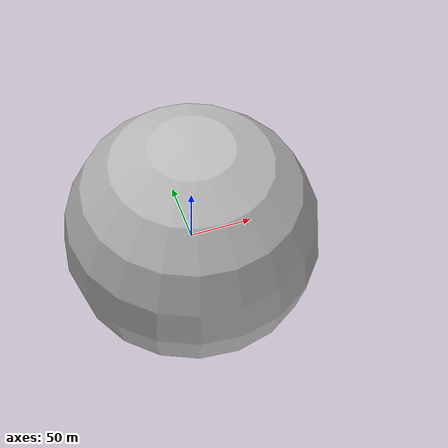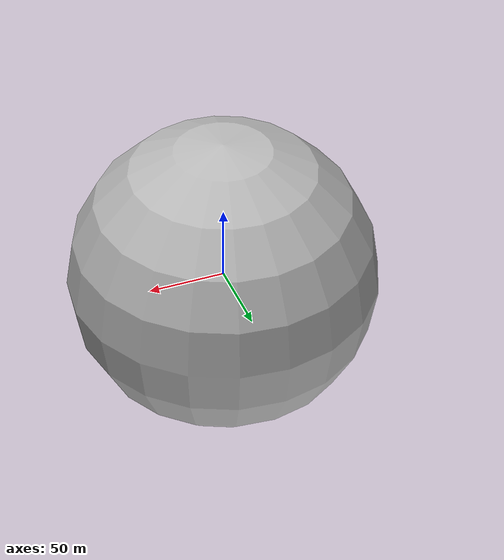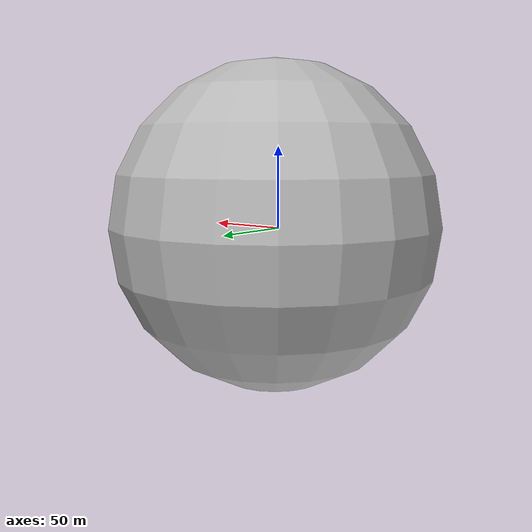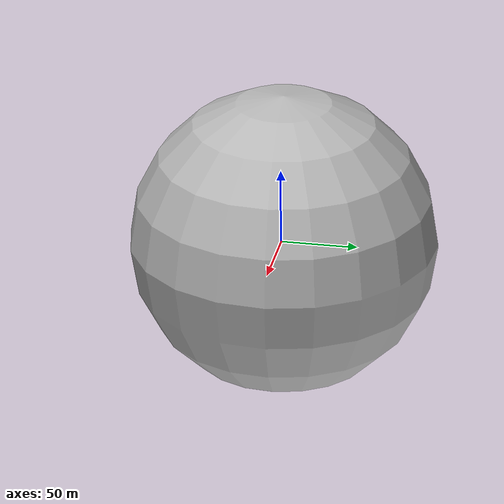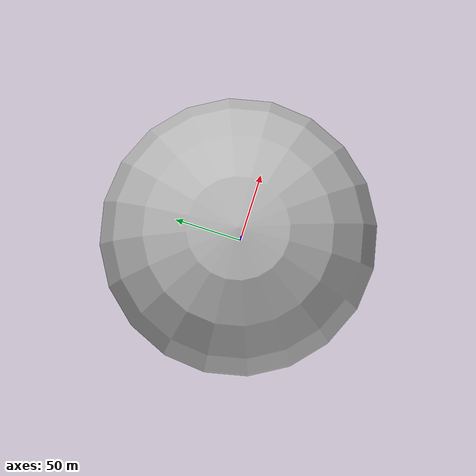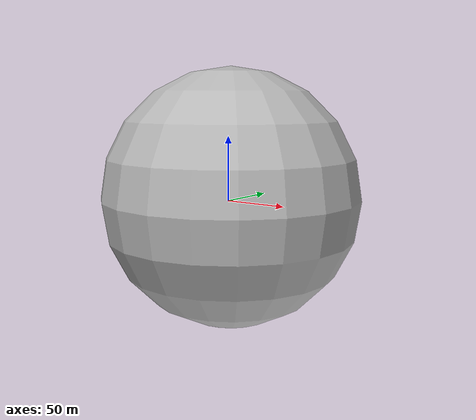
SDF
<?xml version="1.0" ?>
<sdf version="1.6">
  <model name="shapes">
    <pose>1 2 3 0 0 1</pose>
    <link name="link">
      <collision name="box_col">
        <geometry>
          <box>
            <size>3 4 5</size>
          </box>
        </geometry>
      </collision>

      <visual name="box_vis">
        <geometry>
          <box>
            <size>1 2 3</size>
          </box>
        </geometry>
      </visual>

      <collision name="cylinder_col">
        <geometry>
          <cylinder>
            <radius>0.2</radius>
            <length>0.1</length>
          </cylinder>
        </geometry>
      </collision>

      <visual name="cylinder_vis">
        <geometry>
          <cylinder>
            <radius>2.1</radius>
            <length>10.2</length>
          </cylinder>
        </geometry>
      </visual>

      <collision name="plane_col">
        <geometry>
          <plane>
            <normal>1 0 0</normal>
            <size>1.4 6.3</size>
          </plane>
        </geometry>
      </collision>

      <visual name="plane_vis">
        <geometry>
          <plane>
            <normal>0 1 0</normal>
            <size>2 4</size>
          </plane>
        </geometry>
      </visual>

      <collision name="sphere_col">
        <geometry>
          <sphere>
            <radius>23.4</radius>
          </sphere>
        </geometry>
      </collision>

      <visual name="sphere_vis">
        <geometry>
          <sphere>
            <radius>100.2</radius>
          </sphere>
        </geometry>
      </visual>
    </link>
  </model>
</sdf>
